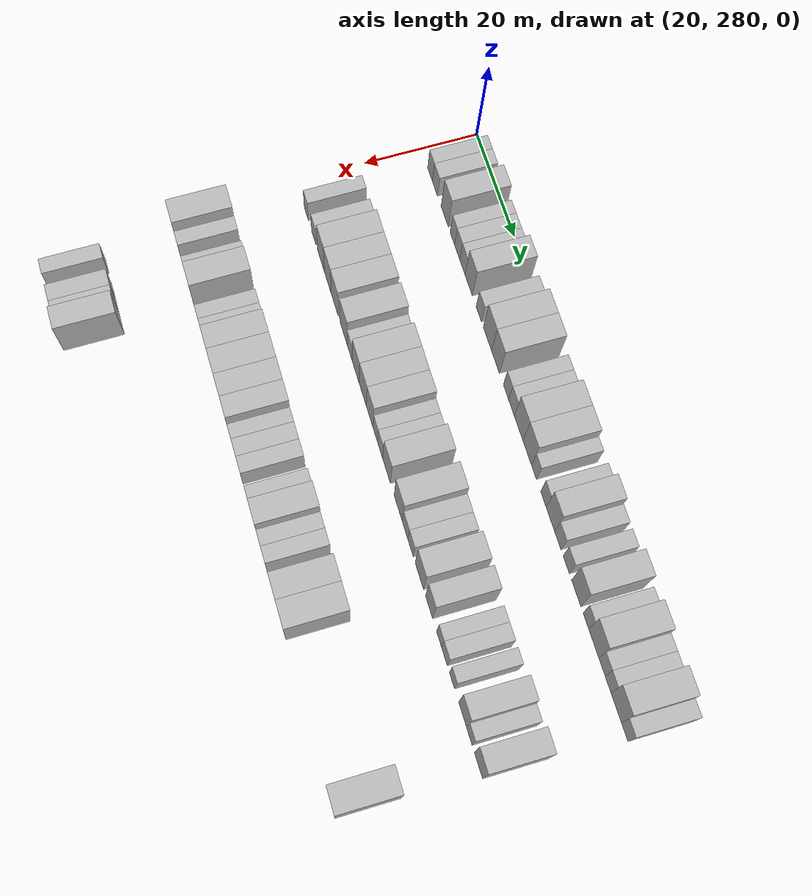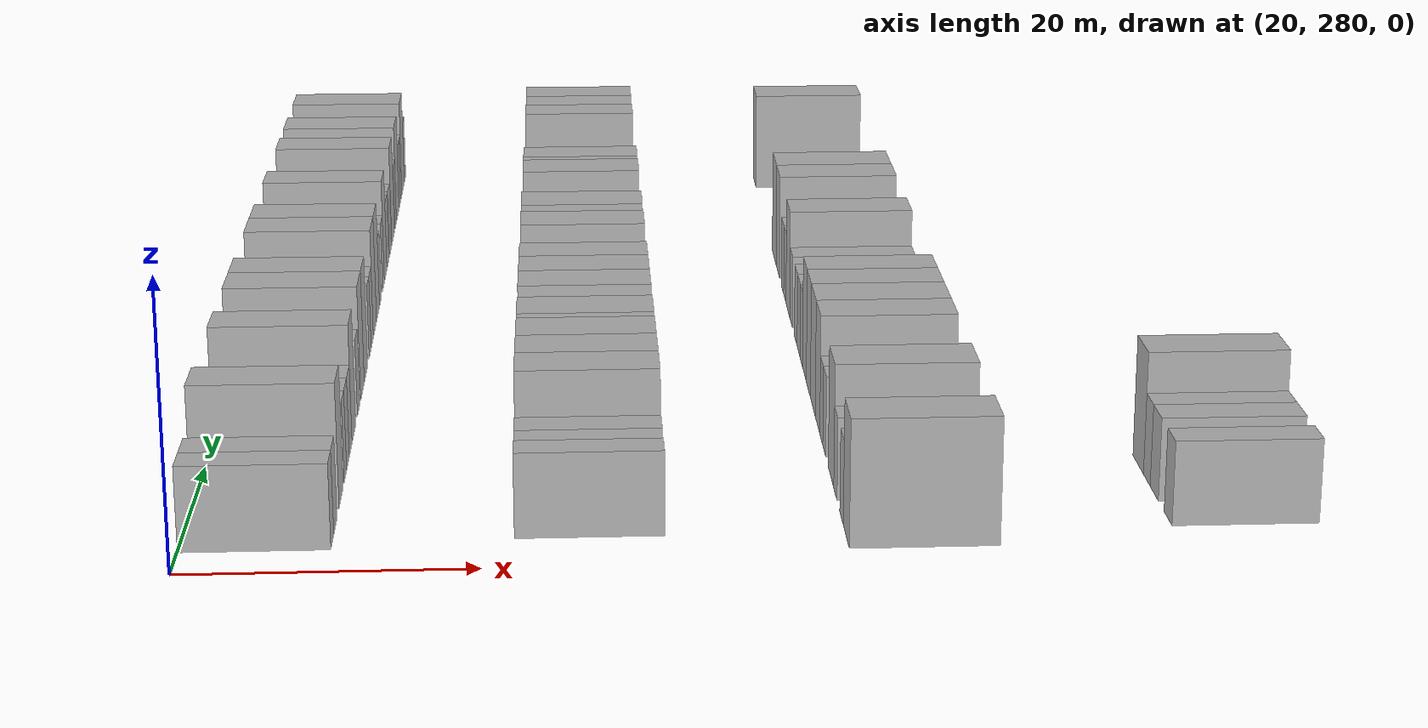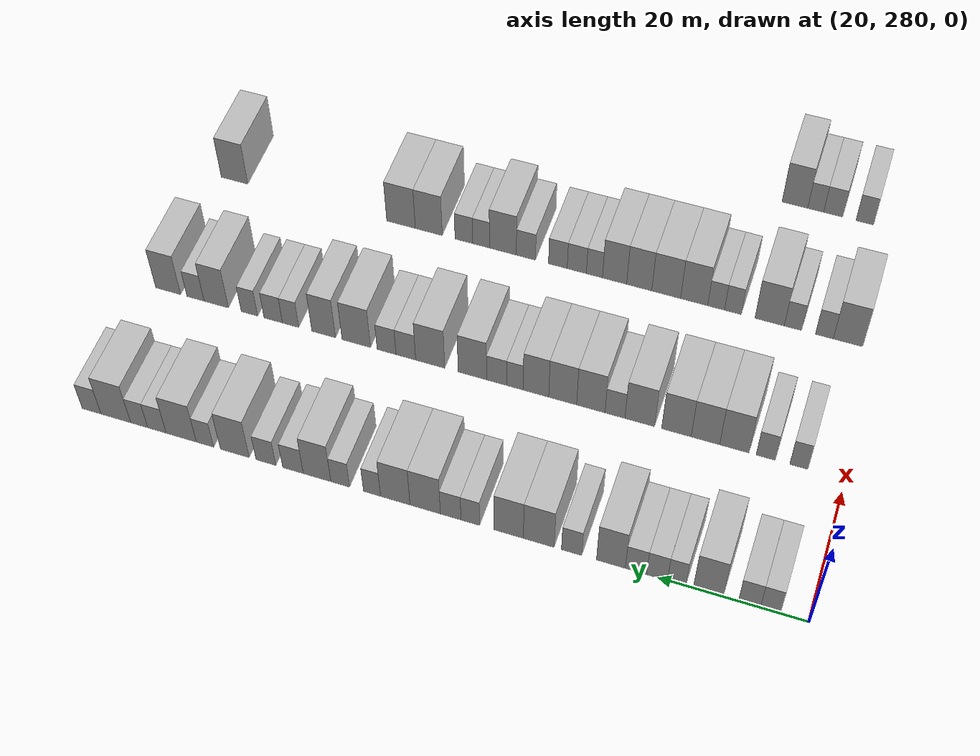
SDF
<sdf version="1.6">
 <world name="default">
  <model name="building_164">
   <static>1</static>
   <pose>25.0000 285.1057 0 0.000000 0.000000 0.000000</pose>
   <link name="link">
    <pose>0 0 3.00 0 0 0</pose>
    <collision name="collision"><geometry><box><size>10.0000 2.6229 6.0000</size></box></geometry></collision>
    <visual name="visual">
     <cast_shadows>0</cast_shadows>
     <geometry><box><size>10.0000 2.6229 6.0000</size></box></geometry>
     <material>
      <script>
       <uri>model://HANNAS_wall/materials/scripts</uri>
       <uri>model://HANNAS_wall/materials/textures</uri>
       <name>vrc/HANNAS_wall</name>
      </script>
     </material>
    </visual>
   </link>
  </model>
  <model name="building_165">
   <static>1</static>
   <pose>25.0000 287.8657 0 0.000000 0.000000 0.000000</pose>
   <link name="link">
    <pose>0 0 3.00 0 0 0</pose>
    <collision name="collision"><geometry><box><size>10.0000 2.8970 6.0000</size></box></geometry></collision>
    <visual name="visual">
     <cast_shadows>0</cast_shadows>
     <geometry><box><size>10.0000 2.8970 6.0000</size></box></geometry>
     <material>
      <script>
       <uri>model://HANNAS_wall/materials/scripts</uri>
       <uri>model://HANNAS_wall/materials/textures</uri>
       <name>vrc/HANNAS_wall</name>
      </script>
     </material>
    </visual>
   </link>
  </model>
  <model name="building_166">
   <static>1</static>
   <pose>25.0000 293.2978 0 0.000000 0.000000 0.000000</pose>
   <link name="link">
    <pose>0 0 4.50 0 0 0</pose>
    <collision name="collision"><geometry><box><size>10.0000 3.9673 9.0000</size></box></geometry></collision>
    <visual name="visual">
     <cast_shadows>0</cast_shadows>
     <geometry><box><size>10.0000 3.9673 9.0000</size></box></geometry>
     <material>
      <script>
       <uri>model://HANNAS_wall/materials/scripts</uri>
       <uri>model://HANNAS_wall/materials/textures</uri>
       <name>vrc/HANNAS_wall</name>
      </script>
     </material>
    </visual>
   </link>
  </model>
  <model name="building_167">
   <static>1</static>
   <pose>25.0000 297.5019 0 0.000000 0.000000 0.000000</pose>
   <link name="link">
    <pose>0 0 3.00 0 0 0</pose>
    <collision name="collision"><geometry><box><size>10.0000 2.4409 6.0000</size></box></geometry></collision>
    <visual name="visual">
     <cast_shadows>0</cast_shadows>
     <geometry><box><size>10.0000 2.4409 6.0000</size></box></geometry>
     <material>
      <script>
       <uri>model://HANNAS_wall/materials/scripts</uri>
       <uri>model://HANNAS_wall/materials/textures</uri>
       <name>vrc/HANNAS_wall</name>
      </script>
     </material>
    </visual>
   </link>
  </model>
  <model name="building_168">
   <static>1</static>
   <pose>25.0000 300.1312 0 0.000000 0.000000 0.000000</pose>
   <link name="link">
    <pose>0 0 3.00 0 0 0</pose>
    <collision name="collision"><geometry><box><size>10.0000 2.8176 6.0000</size></box></geometry></collision>
    <visual name="visual">
     <cast_shadows>0</cast_shadows>
     <geometry><box><size>10.0000 2.8176 6.0000</size></box></geometry>
     <material>
      <script>
       <uri>model://HANNAS_wall/materials/scripts</uri>
       <uri>model://HANNAS_wall/materials/textures</uri>
       <name>vrc/HANNAS_wall</name>
      </script>
     </material>
    </visual>
   </link>
  </model>
  <model name="building_169">
   <static>1</static>
   <pose>25.0000 302.9684 0 0.000000 0.000000 0.000000</pose>
   <link name="link">
    <pose>0 0 3.00 0 0 0</pose>
    <collision name="collision"><geometry><box><size>10.0000 2.8568 6.0000</size></box></geometry></collision>
    <visual name="visual">
     <cast_shadows>0</cast_shadows>
     <geometry><box><size>10.0000 2.8568 6.0000</size></box></geometry>
     <material>
      <script>
       <uri>model://HANNAS_wall/materials/scripts</uri>
       <uri>model://HANNAS_wall/materials/textures</uri>
       <name>vrc/HANNAS_wall</name>
      </script>
     </material>
    </visual>
   </link>
  </model>
  <model name="building_170">
   <static>1</static>
   <pose>25.0000 306.3418 0 0.000000 0.000000 0.000000</pose>
   <link name="link">
    <pose>0 0 4.50 0 0 0</pose>
    <collision name="collision"><geometry><box><size>10.0000 3.8899 9.0000</size></box></geometry></collision>
    <visual name="visual">
     <cast_shadows>0</cast_shadows>
     <geometry><box><size>10.0000 3.8899 9.0000</size></box></geometry>
     <material>
      <script>
       <uri>model://HANNAS_wall/materials/scripts</uri>
       <uri>model://HANNAS_wall/materials/textures</uri>
       <name>vrc/HANNAS_wall</name>
      </script>
     </material>
    </visual>
   </link>
  </model>
  <model name="building_171">
   <static>1</static>
   <pose>25.0000 311.6742 0 0.000000 0.000000 0.000000</pose>
   <link name="link">
    <pose>0 0 3.00 0 0 0</pose>
    <collision name="collision"><geometry><box><size>10.0000 2.7749 6.0000</size></box></geometry></collision>
    <visual name="visual">
     <cast_shadows>0</cast_shadows>
     <geometry><box><size>10.0000 2.7749 6.0000</size></box></geometry>
     <material>
      <script>
       <uri>model://HANNAS_wall/materials/scripts</uri>
       <uri>model://HANNAS_wall/materials/textures</uri>
       <name>vrc/HANNAS_wall</name>
      </script>
     </material>
    </visual>
   </link>
  </model>
  <model name="building_172">
   <static>1</static>
   <pose>25.0000 316.1778 0 0.000000 0.000000 0.000000</pose>
   <link name="link">
    <pose>0 0 4.50 0 0 0</pose>
    <collision name="collision"><geometry><box><size>10.0000 4.2324 9.0000</size></box></geometry></collision>
    <visual name="visual">
     <cast_shadows>0</cast_shadows>
     <geometry><box><size>10.0000 4.2324 9.0000</size></box></geometry>
     <material>
      <script>
       <uri>model://HANNAS_wall/materials/scripts</uri>
       <uri>model://HANNAS_wall/materials/textures</uri>
       <name>vrc/HANNAS_wall</name>
      </script>
     </material>
    </visual>
   </link>
  </model>
  <model name="building_173">
   <static>1</static>
   <pose>25.0000 320.3230 0 0.000000 0.000000 0.000000</pose>
   <link name="link">
    <pose>0 0 4.50 0 0 0</pose>
    <collision name="collision"><geometry><box><size>10.0000 4.0580 9.0000</size></box></geometry></collision>
    <visual name="visual">
     <cast_shadows>0</cast_shadows>
     <geometry><box><size>10.0000 4.0580 9.0000</size></box></geometry>
     <material>
      <script>
       <uri>model://HANNAS_wall/materials/scripts</uri>
       <uri>model://HANNAS_wall/materials/textures</uri>
       <name>vrc/HANNAS_wall</name>
      </script>
     </material>
    </visual>
   </link>
  </model>
  <model name="building_174">
   <static>1</static>
   <pose>25.0000 325.6530 0 0.000000 0.000000 0.000000</pose>
   <link name="link">
    <pose>0 0 3.00 0 0 0</pose>
    <collision name="collision"><geometry><box><size>10.0000 2.6021 6.0000</size></box></geometry></collision>
    <visual name="visual">
     <cast_shadows>0</cast_shadows>
     <geometry><box><size>10.0000 2.6021 6.0000</size></box></geometry>
     <material>
      <script>
       <uri>model://HANNAS_wall/materials/scripts</uri>
       <uri>model://HANNAS_wall/materials/textures</uri>
       <name>vrc/HANNAS_wall</name>
      </script>
     </material>
    </visual>
   </link>
  </model>
  <model name="building_175">
   <static>1</static>
   <pose>25.0000 328.3944 0 0.000000 0.000000 0.000000</pose>
   <link name="link">
    <pose>0 0 3.00 0 0 0</pose>
    <collision name="collision"><geometry><box><size>10.0000 2.8807 6.0000</size></box></geometry></collision>
    <visual name="visual">
     <cast_shadows>0</cast_shadows>
     <geometry><box><size>10.0000 2.8807 6.0000</size></box></geometry>
     <material>
      <script>
       <uri>model://HANNAS_wall/materials/scripts</uri>
       <uri>model://HANNAS_wall/materials/textures</uri>
       <name>vrc/HANNAS_wall</name>
      </script>
     </material>
    </visual>
   </link>
  </model>
  <model name="building_176">
   <static>1</static>
   <pose>25.0000 331.9750 0 0.000000 0.000000 0.000000</pose>
   <link name="link">
    <pose>0 0 4.50 0 0 0</pose>
    <collision name="collision"><geometry><box><size>10.0000 4.2806 9.0000</size></box></geometry></collision>
    <visual name="visual">
     <cast_shadows>0</cast_shadows>
     <geometry><box><size>10.0000 4.2806 9.0000</size></box></geometry>
     <material>
      <script>
       <uri>model://HANNAS_wall/materials/scripts</uri>
       <uri>model://HANNAS_wall/materials/textures</uri>
       <name>vrc/HANNAS_wall</name>
      </script>
     </material>
    </visual>
   </link>
  </model>
  <model name="building_177">
   <static>1</static>
   <pose>25.0000 336.2088 0 0.000000 0.000000 0.000000</pose>
   <link name="link">
    <pose>0 0 4.50 0 0 0</pose>
    <collision name="collision"><geometry><box><size>10.0000 4.1870 9.0000</size></box></geometry></collision>
    <visual name="visual">
     <cast_shadows>0</cast_shadows>
     <geometry><box><size>10.0000 4.1870 9.0000</size></box></geometry>
     <material>
      <script>
       <uri>model://HANNAS_wall/materials/scripts</uri>
       <uri>model://HANNAS_wall/materials/textures</uri>
       <name>vrc/HANNAS_wall</name>
      </script>
     </material>
    </visual>
   </link>
  </model>
  <model name="building_178">
   <static>1</static>
   <pose>25.0000 339.5076 0 0.000000 0.000000 0.000000</pose>
   <link name="link">
    <pose>0 0 3.00 0 0 0</pose>
    <collision name="collision"><geometry><box><size>10.0000 2.4106 6.0000</size></box></geometry></collision>
    <visual name="visual">
     <cast_shadows>0</cast_shadows>
     <geometry><box><size>10.0000 2.4106 6.0000</size></box></geometry>
     <material>
      <script>
       <uri>model://HANNAS_wall/materials/scripts</uri>
       <uri>model://HANNAS_wall/materials/textures</uri>
       <name>vrc/HANNAS_wall</name>
      </script>
     </material>
    </visual>
   </link>
  </model>
  <model name="building_179">
   <static>1</static>
   <pose>25.0000 344.0522 0 0.000000 0.000000 0.000000</pose>
   <link name="link">
    <pose>0 0 3.00 0 0 0</pose>
    <collision name="collision"><geometry><box><size>10.0000 2.6786 6.0000</size></box></geometry></collision>
    <visual name="visual">
     <cast_shadows>0</cast_shadows>
     <geometry><box><size>10.0000 2.6786 6.0000</size></box></geometry>
     <material>
      <script>
       <uri>model://HANNAS_wall/materials/scripts</uri>
       <uri>model://HANNAS_wall/materials/textures</uri>
       <name>vrc/HANNAS_wall</name>
      </script>
     </material>
    </visual>
   </link>
  </model>
  <model name="building_180">
   <static>1</static>
   <pose>25.0000 347.3830 0 0.000000 0.000000 0.000000</pose>
   <link name="link">
    <pose>0 0 4.50 0 0 0</pose>
    <collision name="collision"><geometry><box><size>10.0000 3.9830 9.0000</size></box></geometry></collision>
    <visual name="visual">
     <cast_shadows>0</cast_shadows>
     <geometry><box><size>10.0000 3.9830 9.0000</size></box></geometry>
     <material>
      <script>
       <uri>model://HANNAS_wall/materials/scripts</uri>
       <uri>model://HANNAS_wall/materials/textures</uri>
       <name>vrc/HANNAS_wall</name>
      </script>
     </material>
    </visual>
   </link>
  </model>
  <model name="building_181">
   <static>1</static>
   <pose>25.0000 350.8645 0 0.000000 0.000000 0.000000</pose>
   <link name="link">
    <pose>0 0 3.00 0 0 0</pose>
    <collision name="collision"><geometry><box><size>10.0000 2.9799 6.0000</size></box></geometry></collision>
    <visual name="visual">
     <cast_shadows>0</cast_shadows>
     <geometry><box><size>10.0000 2.9799 6.0000</size></box></geometry>
     <material>
      <script>
       <uri>model://HANNAS_wall/materials/scripts</uri>
       <uri>model://HANNAS_wall/materials/textures</uri>
       <name>vrc/HANNAS_wall</name>
      </script>
     </material>
    </visual>
   </link>
  </model>
  <model name="building_182">
   <static>1</static>
   <pose>25.0000 354.7962 0 0.000000 0.000000 0.000000</pose>
   <link name="link">
    <pose>0 0 3.00 0 0 0</pose>
    <collision name="collision"><geometry><box><size>10.0000 2.8835 6.0000</size></box></geometry></collision>
    <visual name="visual">
     <cast_shadows>0</cast_shadows>
     <geometry><box><size>10.0000 2.8835 6.0000</size></box></geometry>
     <material>
      <script>
       <uri>model://HANNAS_wall/materials/scripts</uri>
       <uri>model://HANNAS_wall/materials/textures</uri>
       <name>vrc/HANNAS_wall</name>
      </script>
     </material>
    </visual>
   </link>
  </model>
  <model name="building_183">
   <static>1</static>
   <pose>25.0000 359.3521 0 0.000000 0.000000 0.000000</pose>
   <link name="link">
    <pose>0 0 4.50 0 0 0</pose>
    <collision name="collision"><geometry><box><size>10.0000 4.2284 9.0000</size></box></geometry></collision>
    <visual name="visual">
     <cast_shadows>0</cast_shadows>
     <geometry><box><size>10.0000 4.2284 9.0000</size></box></geometry>
     <material>
      <script>
       <uri>model://HANNAS_wall/materials/scripts</uri>
       <uri>model://HANNAS_wall/materials/textures</uri>
       <name>vrc/HANNAS_wall</name>
      </script>
     </material>
    </visual>
   </link>
  </model>
  <model name="building_184">
   <static>1</static>
   <pose>25.0000 363.7440 0 0.000000 0.000000 0.000000</pose>
   <link name="link">
    <pose>0 0 3.00 0 0 0</pose>
    <collision name="collision"><geometry><box><size>10.0000 2.5555 6.0000</size></box></geometry></collision>
    <visual name="visual">
     <cast_shadows>0</cast_shadows>
     <geometry><box><size>10.0000 2.5555 6.0000</size></box></geometry>
     <material>
      <script>
       <uri>model://HANNAS_wall/materials/scripts</uri>
       <uri>model://HANNAS_wall/materials/textures</uri>
       <name>vrc/HANNAS_wall</name>
      </script>
     </material>
    </visual>
   </link>
  </model>
  <model name="building_185">
   <static>1</static>
   <pose>25.0000 367.2631 0 0.000000 0.000000 0.000000</pose>
   <link name="link">
    <pose>0 0 4.50 0 0 0</pose>
    <collision name="collision"><geometry><box><size>10.0000 4.4826 9.0000</size></box></geometry></collision>
    <visual name="visual">
     <cast_shadows>0</cast_shadows>
     <geometry><box><size>10.0000 4.4826 9.0000</size></box></geometry>
     <material>
      <script>
       <uri>model://HANNAS_wall/materials/scripts</uri>
       <uri>model://HANNAS_wall/materials/textures</uri>
       <name>vrc/HANNAS_wall</name>
      </script>
     </material>
    </visual>
   </link>
  </model>
  <model name="building_186">
   <static>1</static>
   <pose>25.0000 370.8858 0 0.000000 0.000000 0.000000</pose>
   <link name="link">
    <pose>0 0 3.00 0 0 0</pose>
    <collision name="collision"><geometry><box><size>10.0000 2.7629 6.0000</size></box></geometry></collision>
    <visual name="visual">
     <cast_shadows>0</cast_shadows>
     <geometry><box><size>10.0000 2.7629 6.0000</size></box></geometry>
     <material>
      <script>
       <uri>model://HANNAS_wall/materials/scripts</uri>
       <uri>model://HANNAS_wall/materials/textures</uri>
       <name>vrc/HANNAS_wall</name>
      </script>
     </material>
    </visual>
   </link>
  </model>
  <model name="building_187">
   <static>1</static>
   <pose>25.0000 373.5499 0 0.000000 0.000000 0.000000</pose>
   <link name="link">
    <pose>0 0 3.00 0 0 0</pose>
    <collision name="collision"><geometry><box><size>10.0000 2.5653 6.0000</size></box></geometry></collision>
    <visual name="visual">
     <cast_shadows>0</cast_shadows>
     <geometry><box><size>10.0000 2.5653 6.0000</size></box></geometry>
     <material>
      <script>
       <uri>model://HANNAS_wall/materials/scripts</uri>
       <uri>model://HANNAS_wall/materials/textures</uri>
       <name>vrc/HANNAS_wall</name>
      </script>
     </material>
    </visual>
   </link>
  </model>
  <model name="building_188">
   <static>1</static>
   <pose>25.0000 377.0662 0 0.000000 0.000000 0.000000</pose>
   <link name="link">
    <pose>0 0 4.50 0 0 0</pose>
    <collision name="collision"><geometry><box><size>10.0000 4.4672 9.0000</size></box></geometry></collision>
    <visual name="visual">
     <cast_shadows>0</cast_shadows>
     <geometry><box><size>10.0000 4.4672 9.0000</size></box></geometry>
     <material>
      <script>
       <uri>model://HANNAS_wall/materials/scripts</uri>
       <uri>model://HANNAS_wall/materials/textures</uri>
       <name>vrc/HANNAS_wall</name>
      </script>
     </material>
    </visual>
   </link>
  </model>
  <model name="building_189">
   <static>1</static>
   <pose>25.0000 380.7183 0 0.000000 0.000000 0.000000</pose>
   <link name="link">
    <pose>0 0 3.00 0 0 0</pose>
    <collision name="collision"><geometry><box><size>10.0000 2.8371 6.0000</size></box></geometry></collision>
    <visual name="visual">
     <cast_shadows>0</cast_shadows>
     <geometry><box><size>10.0000 2.8371 6.0000</size></box></geometry>
     <material>
      <script>
       <uri>model://HANNAS_wall/materials/scripts</uri>
       <uri>model://HANNAS_wall/materials/textures</uri>
       <name>vrc/HANNAS_wall</name>
      </script>
     </material>
    </visual>
   </link>
  </model>
  <model name="building_345">
   <static>1</static>
   <pose>47.0000 286.4141 0 0.000000 0.000000 0.000000</pose>
   <link name="link">
    <pose>0 0 3.00 0 0 0</pose>
    <collision name="collision"><geometry><box><size>10.0000 2.5026 6.0000</size></box></geometry></collision>
    <visual name="visual">
     <cast_shadows>0</cast_shadows>
     <geometry><box><size>10.0000 2.5026 6.0000</size></box></geometry>
     <material>
      <script>
       <uri>model://HANNAS_wall/materials/scripts</uri>
       <uri>model://HANNAS_wall/materials/textures</uri>
       <name>vrc/HANNAS_wall</name>
      </script>
     </material>
    </visual>
   </link>
  </model>
  <model name="building_346">
   <static>1</static>
   <pose>47.0000 290.9890 0 0.000000 0.000000 0.000000</pose>
   <link name="link">
    <pose>0 0 3.00 0 0 0</pose>
    <collision name="collision"><geometry><box><size>10.0000 2.6471 6.0000</size></box></geometry></collision>
    <visual name="visual">
     <cast_shadows>0</cast_shadows>
     <geometry><box><size>10.0000 2.6471 6.0000</size></box></geometry>
     <material>
      <script>
       <uri>model://HANNAS_wall/materials/scripts</uri>
       <uri>model://HANNAS_wall/materials/textures</uri>
       <name>vrc/HANNAS_wall</name>
      </script>
     </material>
    </visual>
   </link>
  </model>
  <model name="building_347">
   <static>1</static>
   <pose>47.0000 295.3597 0 0.000000 0.000000 0.000000</pose>
   <link name="link">
    <pose>0 0 4.50 0 0 0</pose>
    <collision name="collision"><geometry><box><size>10.0000 4.0942 9.0000</size></box></geometry></collision>
    <visual name="visual">
     <cast_shadows>0</cast_shadows>
     <geometry><box><size>10.0000 4.0942 9.0000</size></box></geometry>
     <material>
      <script>
       <uri>model://HANNAS_wall/materials/scripts</uri>
       <uri>model://HANNAS_wall/materials/textures</uri>
       <name>vrc/HANNAS_wall</name>
      </script>
     </material>
    </visual>
   </link>
  </model>
  <model name="building_348">
   <static>1</static>
   <pose>47.0000 299.4122 0 0.000000 0.000000 0.000000</pose>
   <link name="link">
    <pose>0 0 4.50 0 0 0</pose>
    <collision name="collision"><geometry><box><size>10.0000 4.0108 9.0000</size></box></geometry></collision>
    <visual name="visual">
     <cast_shadows>0</cast_shadows>
     <geometry><box><size>10.0000 4.0108 9.0000</size></box></geometry>
     <material>
      <script>
       <uri>model://HANNAS_wall/materials/scripts</uri>
       <uri>model://HANNAS_wall/materials/textures</uri>
       <name>vrc/HANNAS_wall</name>
      </script>
     </material>
    </visual>
   </link>
  </model>
  <model name="building_349">
   <static>1</static>
   <pose>47.0000 303.4956 0 0.000000 0.000000 0.000000</pose>
   <link name="link">
    <pose>0 0 4.50 0 0 0</pose>
    <collision name="collision"><geometry><box><size>10.0000 4.1561 9.0000</size></box></geometry></collision>
    <visual name="visual">
     <cast_shadows>0</cast_shadows>
     <geometry><box><size>10.0000 4.1561 9.0000</size></box></geometry>
     <material>
      <script>
       <uri>model://HANNAS_wall/materials/scripts</uri>
       <uri>model://HANNAS_wall/materials/textures</uri>
       <name>vrc/HANNAS_wall</name>
      </script>
     </material>
    </visual>
   </link>
  </model>
  <model name="building_350">
   <static>1</static>
   <pose>47.0000 308.6866 0 0.000000 0.000000 0.000000</pose>
   <link name="link">
    <pose>0 0 4.50 0 0 0</pose>
    <collision name="collision"><geometry><box><size>10.0000 4.2259 9.0000</size></box></geometry></collision>
    <visual name="visual">
     <cast_shadows>0</cast_shadows>
     <geometry><box><size>10.0000 4.2259 9.0000</size></box></geometry>
     <material>
      <script>
       <uri>model://HANNAS_wall/materials/scripts</uri>
       <uri>model://HANNAS_wall/materials/textures</uri>
       <name>vrc/HANNAS_wall</name>
      </script>
     </material>
    </visual>
   </link>
  </model>
  <model name="building_351">
   <static>1</static>
   <pose>47.0000 312.2219 0 0.000000 0.000000 0.000000</pose>
   <link name="link">
    <pose>0 0 3.00 0 0 0</pose>
    <collision name="collision"><geometry><box><size>10.0000 2.8447 6.0000</size></box></geometry></collision>
    <visual name="visual">
     <cast_shadows>0</cast_shadows>
     <geometry><box><size>10.0000 2.8447 6.0000</size></box></geometry>
     <material>
      <script>
       <uri>model://HANNAS_wall/materials/scripts</uri>
       <uri>model://HANNAS_wall/materials/textures</uri>
       <name>vrc/HANNAS_wall</name>
      </script>
     </material>
    </visual>
   </link>
  </model>
  <model name="building_352">
   <static>1</static>
   <pose>47.0000 315.6853 0 0.000000 0.000000 0.000000</pose>
   <link name="link">
    <pose>0 0 4.50 0 0 0</pose>
    <collision name="collision"><geometry><box><size>10.0000 4.0821 9.0000</size></box></geometry></collision>
    <visual name="visual">
     <cast_shadows>0</cast_shadows>
     <geometry><box><size>10.0000 4.0821 9.0000</size></box></geometry>
     <material>
      <script>
       <uri>model://HANNAS_wall/materials/scripts</uri>
       <uri>model://HANNAS_wall/materials/textures</uri>
       <name>vrc/HANNAS_wall</name>
      </script>
     </material>
    </visual>
   </link>
  </model>
  <model name="building_353">
   <static>1</static>
   <pose>47.0000 319.7417 0 0.000000 0.000000 0.000000</pose>
   <link name="link">
    <pose>0 0 4.50 0 0 0</pose>
    <collision name="collision"><geometry><box><size>10.0000 4.0307 9.0000</size></box></geometry></collision>
    <visual name="visual">
     <cast_shadows>0</cast_shadows>
     <geometry><box><size>10.0000 4.0307 9.0000</size></box></geometry>
     <material>
      <script>
       <uri>model://HANNAS_wall/materials/scripts</uri>
       <uri>model://HANNAS_wall/materials/textures</uri>
       <name>vrc/HANNAS_wall</name>
      </script>
     </material>
    </visual>
   </link>
  </model>
  <model name="building_354">
   <static>1</static>
   <pose>47.0000 323.6150 0 0.000000 0.000000 0.000000</pose>
   <link name="link">
    <pose>0 0 4.50 0 0 0</pose>
    <collision name="collision"><geometry><box><size>10.0000 3.7158 9.0000</size></box></geometry></collision>
    <visual name="visual">
     <cast_shadows>0</cast_shadows>
     <geometry><box><size>10.0000 3.7158 9.0000</size></box></geometry>
     <material>
      <script>
       <uri>model://HANNAS_wall/materials/scripts</uri>
       <uri>model://HANNAS_wall/materials/textures</uri>
       <name>vrc/HANNAS_wall</name>
      </script>
     </material>
    </visual>
   </link>
  </model>
  <model name="building_355">
   <static>1</static>
   <pose>47.0000 326.6902 0 0.000000 0.000000 0.000000</pose>
   <link name="link">
    <pose>0 0 3.00 0 0 0</pose>
    <collision name="collision"><geometry><box><size>10.0000 2.4345 6.0000</size></box></geometry></collision>
    <visual name="visual">
     <cast_shadows>0</cast_shadows>
     <geometry><box><size>10.0000 2.4345 6.0000</size></box></geometry>
     <material>
      <script>
       <uri>model://HANNAS_wall/materials/scripts</uri>
       <uri>model://HANNAS_wall/materials/textures</uri>
       <name>vrc/HANNAS_wall</name>
      </script>
     </material>
    </visual>
   </link>
  </model>
  <model name="building_356">
   <static>1</static>
   <pose>47.0000 329.3553 0 0.000000 0.000000 0.000000</pose>
   <link name="link">
    <pose>0 0 3.00 0 0 0</pose>
    <collision name="collision"><geometry><box><size>10.0000 2.8957 6.0000</size></box></geometry></collision>
    <visual name="visual">
     <cast_shadows>0</cast_shadows>
     <geometry><box><size>10.0000 2.8957 6.0000</size></box></geometry>
     <material>
      <script>
       <uri>model://HANNAS_wall/materials/scripts</uri>
       <uri>model://HANNAS_wall/materials/textures</uri>
       <name>vrc/HANNAS_wall</name>
      </script>
     </material>
    </visual>
   </link>
  </model>
  <model name="building_357">
   <static>1</static>
   <pose>47.0000 332.8949 0 0.000000 0.000000 0.000000</pose>
   <link name="link">
    <pose>0 0 4.50 0 0 0</pose>
    <collision name="collision"><geometry><box><size>10.0000 4.1837 9.0000</size></box></geometry></collision>
    <visual name="visual">
     <cast_shadows>0</cast_shadows>
     <geometry><box><size>10.0000 4.1837 9.0000</size></box></geometry>
     <material>
      <script>
       <uri>model://HANNAS_wall/materials/scripts</uri>
       <uri>model://HANNAS_wall/materials/textures</uri>
       <name>vrc/HANNAS_wall</name>
      </script>
     </material>
    </visual>
   </link>
  </model>
  <model name="building_358">
   <static>1</static>
   <pose>47.0000 339.1475 0 0.000000 0.000000 0.000000</pose>
   <link name="link">
    <pose>0 0 4.50 0 0 0</pose>
    <collision name="collision"><geometry><box><size>10.0000 4.3216 9.0000</size></box></geometry></collision>
    <visual name="visual">
     <cast_shadows>0</cast_shadows>
     <geometry><box><size>10.0000 4.3216 9.0000</size></box></geometry>
     <material>
      <script>
       <uri>model://HANNAS_wall/materials/scripts</uri>
       <uri>model://HANNAS_wall/materials/textures</uri>
       <name>vrc/HANNAS_wall</name>
      </script>
     </material>
    </visual>
   </link>
  </model>
  <model name="building_359">
   <static>1</static>
   <pose>47.0000 342.7849 0 0.000000 0.000000 0.000000</pose>
   <link name="link">
    <pose>0 0 3.00 0 0 0</pose>
    <collision name="collision"><geometry><box><size>10.0000 2.9531 6.0000</size></box></geometry></collision>
    <visual name="visual">
     <cast_shadows>0</cast_shadows>
     <geometry><box><size>10.0000 2.9531 6.0000</size></box></geometry>
     <material>
      <script>
       <uri>model://HANNAS_wall/materials/scripts</uri>
       <uri>model://HANNAS_wall/materials/textures</uri>
       <name>vrc/HANNAS_wall</name>
      </script>
     </material>
    </visual>
   </link>
  </model>
  <model name="building_360">
   <static>1</static>
   <pose>47.0000 345.6734 0 0.000000 0.000000 0.000000</pose>
   <link name="link">
    <pose>0 0 3.00 0 0 0</pose>
    <collision name="collision"><geometry><box><size>10.0000 2.8239 6.0000</size></box></geometry></collision>
    <visual name="visual">
     <cast_shadows>0</cast_shadows>
     <geometry><box><size>10.0000 2.8239 6.0000</size></box></geometry>
     <material>
      <script>
       <uri>model://HANNAS_wall/materials/scripts</uri>
       <uri>model://HANNAS_wall/materials/textures</uri>
       <name>vrc/HANNAS_wall</name>
      </script>
     </material>
    </visual>
   </link>
  </model>
  <model name="building_361">
   <static>1</static>
   <pose>47.0000 350.2312 0 0.000000 0.000000 0.000000</pose>
   <link name="link">
    <pose>0 0 4.50 0 0 0</pose>
    <collision name="collision"><geometry><box><size>10.0000 4.2918 9.0000</size></box></geometry></collision>
    <visual name="visual">
     <cast_shadows>0</cast_shadows>
     <geometry><box><size>10.0000 4.2918 9.0000</size></box></geometry>
     <material>
      <script>
       <uri>model://HANNAS_wall/materials/scripts</uri>
       <uri>model://HANNAS_wall/materials/textures</uri>
       <name>vrc/HANNAS_wall</name>
      </script>
     </material>
    </visual>
   </link>
  </model>
  <model name="building_362">
   <static>1</static>
   <pose>47.0000 355.1775 0 0.000000 0.000000 0.000000</pose>
   <link name="link">
    <pose>0 0 4.50 0 0 0</pose>
    <collision name="collision"><geometry><box><size>10.0000 3.6007 9.0000</size></box></geometry></collision>
    <visual name="visual">
     <cast_shadows>0</cast_shadows>
     <geometry><box><size>10.0000 3.6007 9.0000</size></box></geometry>
     <material>
      <script>
       <uri>model://HANNAS_wall/materials/scripts</uri>
       <uri>model://HANNAS_wall/materials/textures</uri>
       <name>vrc/HANNAS_wall</name>
      </script>
     </material>
    </visual>
   </link>
  </model>
  <model name="building_363">
   <static>1</static>
   <pose>47.0000 360.2340 0 0.000000 0.000000 0.000000</pose>
   <link name="link">
    <pose>0 0 3.00 0 0 0</pose>
    <collision name="collision"><geometry><box><size>10.0000 2.5124 6.0000</size></box></geometry></collision>
    <visual name="visual">
     <cast_shadows>0</cast_shadows>
     <geometry><box><size>10.0000 2.5124 6.0000</size></box></geometry>
     <material>
      <script>
       <uri>model://HANNAS_wall/materials/scripts</uri>
       <uri>model://HANNAS_wall/materials/textures</uri>
       <name>vrc/HANNAS_wall</name>
      </script>
     </material>
    </visual>
   </link>
  </model>
  <model name="building_364">
   <static>1</static>
   <pose>47.0000 362.8996 0 0.000000 0.000000 0.000000</pose>
   <link name="link">
    <pose>0 0 3.00 0 0 0</pose>
    <collision name="collision"><geometry><box><size>10.0000 2.8188 6.0000</size></box></geometry></collision>
    <visual name="visual">
     <cast_shadows>0</cast_shadows>
     <geometry><box><size>10.0000 2.8188 6.0000</size></box></geometry>
     <material>
      <script>
       <uri>model://HANNAS_wall/materials/scripts</uri>
       <uri>model://HANNAS_wall/materials/textures</uri>
       <name>vrc/HANNAS_wall</name>
      </script>
     </material>
    </visual>
   </link>
  </model>
  <model name="building_365">
   <static>1</static>
   <pose>47.0000 366.5735 0 0.000000 0.000000 0.000000</pose>
   <link name="link">
    <pose>0 0 3.00 0 0 0</pose>
    <collision name="collision"><geometry><box><size>10.0000 2.5292 6.0000</size></box></geometry></collision>
    <visual name="visual">
     <cast_shadows>0</cast_shadows>
     <geometry><box><size>10.0000 2.5292 6.0000</size></box></geometry>
     <material>
      <script>
       <uri>model://HANNAS_wall/materials/scripts</uri>
       <uri>model://HANNAS_wall/materials/textures</uri>
       <name>vrc/HANNAS_wall</name>
      </script>
     </material>
    </visual>
   </link>
  </model>
  <model name="building_366">
   <static>1</static>
   <pose>47.0000 371.7346 0 0.000000 0.000000 0.000000</pose>
   <link name="link">
    <pose>0 0 4.50 0 0 0</pose>
    <collision name="collision"><geometry><box><size>10.0000 3.7930 9.0000</size></box></geometry></collision>
    <visual name="visual">
     <cast_shadows>0</cast_shadows>
     <geometry><box><size>10.0000 3.7930 9.0000</size></box></geometry>
     <material>
      <script>
       <uri>model://HANNAS_wall/materials/scripts</uri>
       <uri>model://HANNAS_wall/materials/textures</uri>
       <name>vrc/HANNAS_wall</name>
      </script>
     </material>
    </visual>
   </link>
  </model>
  <model name="building_367">
   <static>1</static>
   <pose>47.0000 374.9677 0 0.000000 0.000000 0.000000</pose>
   <link name="link">
    <pose>0 0 3.00 0 0 0</pose>
    <collision name="collision"><geometry><box><size>10.0000 2.6732 6.0000</size></box></geometry></collision>
    <visual name="visual">
     <cast_shadows>0</cast_shadows>
     <geometry><box><size>10.0000 2.6732 6.0000</size></box></geometry>
     <material>
      <script>
       <uri>model://HANNAS_wall/materials/scripts</uri>
       <uri>model://HANNAS_wall/materials/textures</uri>
       <name>vrc/HANNAS_wall</name>
      </script>
     </material>
    </visual>
   </link>
  </model>
  <model name="building_368">
   <static>1</static>
   <pose>47.0000 379.2585 0 0.000000 0.000000 0.000000</pose>
   <link name="link">
    <pose>0 0 4.50 0 0 0</pose>
    <collision name="collision"><geometry><box><size>10.0000 3.9084 9.0000</size></box></geometry></collision>
    <visual name="visual">
     <cast_shadows>0</cast_shadows>
     <geometry><box><size>10.0000 3.9084 9.0000</size></box></geometry>
     <material>
      <script>
       <uri>model://HANNAS_wall/materials/scripts</uri>
       <uri>model://HANNAS_wall/materials/textures</uri>
       <name>vrc/HANNAS_wall</name>
      </script>
     </material>
    </visual>
   </link>
  </model>
  <model name="building_520">
   <static>1</static>
   <pose>69.0000 284.3767 0 0.000000 0.000000 0.000000</pose>
   <link name="link">
    <pose>0 0 4.50 0 0 0</pose>
    <collision name="collision"><geometry><box><size>10.0000 4.2348 9.0000</size></box></geometry></collision>
    <visual name="visual">
     <cast_shadows>0</cast_shadows>
     <geometry><box><size>10.0000 4.2348 9.0000</size></box></geometry>
     <material>
      <script>
       <uri>model://HANNAS_wall/materials/scripts</uri>
       <uri>model://HANNAS_wall/materials/textures</uri>
       <name>vrc/HANNAS_wall</name>
      </script>
     </material>
    </visual>
   </link>
  </model>
  <model name="building_521">
   <static>1</static>
   <pose>69.0000 287.7784 0 0.000000 0.000000 0.000000</pose>
   <link name="link">
    <pose>0 0 3.00 0 0 0</pose>
    <collision name="collision"><geometry><box><size>10.0000 2.5685 6.0000</size></box></geometry></collision>
    <visual name="visual">
     <cast_shadows>0</cast_shadows>
     <geometry><box><size>10.0000 2.5685 6.0000</size></box></geometry>
     <material>
      <script>
       <uri>model://HANNAS_wall/materials/scripts</uri>
       <uri>model://HANNAS_wall/materials/textures</uri>
       <name>vrc/HANNAS_wall</name>
      </script>
     </material>
    </visual>
   </link>
  </model>
  <model name="building_522">
   <static>1</static>
   <pose>69.0000 292.3229 0 0.000000 0.000000 0.000000</pose>
   <link name="link">
    <pose>0 0 3.00 0 0 0</pose>
    <collision name="collision"><geometry><box><size>10.0000 2.5205 6.0000</size></box></geometry></collision>
    <visual name="visual">
     <cast_shadows>0</cast_shadows>
     <geometry><box><size>10.0000 2.5205 6.0000</size></box></geometry>
     <material>
      <script>
       <uri>model://HANNAS_wall/materials/scripts</uri>
       <uri>model://HANNAS_wall/materials/textures</uri>
       <name>vrc/HANNAS_wall</name>
      </script>
     </material>
    </visual>
   </link>
  </model>
  <model name="building_523">
   <static>1</static>
   <pose>69.0000 295.7220 0 0.000000 0.000000 0.000000</pose>
   <link name="link">
    <pose>0 0 4.50 0 0 0</pose>
    <collision name="collision"><geometry><box><size>10.0000 4.2778 9.0000</size></box></geometry></collision>
    <visual name="visual">
     <cast_shadows>0</cast_shadows>
     <geometry><box><size>10.0000 4.2778 9.0000</size></box></geometry>
     <material>
      <script>
       <uri>model://HANNAS_wall/materials/scripts</uri>
       <uri>model://HANNAS_wall/materials/textures</uri>
       <name>vrc/HANNAS_wall</name>
      </script>
     </material>
    </visual>
   </link>
  </model>
  <model name="building_524">
   <static>1</static>
   <pose>69.0000 301.0984 0 0.000000 0.000000 0.000000</pose>
   <link name="link">
    <pose>0 0 3.00 0 0 0</pose>
    <collision name="collision"><geometry><box><size>10.0000 2.4748 6.0000</size></box></geometry></collision>
    <visual name="visual">
     <cast_shadows>0</cast_shadows>
     <geometry><box><size>10.0000 2.4748 6.0000</size></box></geometry>
     <material>
      <script>
       <uri>model://HANNAS_wall/materials/scripts</uri>
       <uri>model://HANNAS_wall/materials/textures</uri>
       <name>vrc/HANNAS_wall</name>
      </script>
     </material>
    </visual>
   </link>
  </model>
  <model name="building_525">
   <static>1</static>
   <pose>69.0000 303.5728 0 0.000000 0.000000 0.000000</pose>
   <link name="link">
    <pose>0 0 3.00 0 0 0</pose>
    <collision name="collision"><geometry><box><size>10.0000 2.4742 6.0000</size></box></geometry></collision>
    <visual name="visual">
     <cast_shadows>0</cast_shadows>
     <geometry><box><size>10.0000 2.4742 6.0000</size></box></geometry>
     <material>
      <script>
       <uri>model://HANNAS_wall/materials/scripts</uri>
       <uri>model://HANNAS_wall/materials/textures</uri>
       <name>vrc/HANNAS_wall</name>
      </script>
     </material>
    </visual>
   </link>
  </model>
  <model name="building_526">
   <static>1</static>
   <pose>69.0000 306.8169 0 0.000000 0.000000 0.000000</pose>
   <link name="link">
    <pose>0 0 4.50 0 0 0</pose>
    <collision name="collision"><geometry><box><size>10.0000 4.0139 9.0000</size></box></geometry></collision>
    <visual name="visual">
     <cast_shadows>0</cast_shadows>
     <geometry><box><size>10.0000 4.0139 9.0000</size></box></geometry>
     <material>
      <script>
       <uri>model://HANNAS_wall/materials/scripts</uri>
       <uri>model://HANNAS_wall/materials/textures</uri>
       <name>vrc/HANNAS_wall</name>
      </script>
     </material>
    </visual>
   </link>
  </model>
  <model name="building_527">
   <static>1</static>
   <pose>69.0000 310.9758 0 0.000000 0.000000 0.000000</pose>
   <link name="link">
    <pose>0 0 4.50 0 0 0</pose>
    <collision name="collision"><geometry><box><size>10.0000 4.3039 9.0000</size></box></geometry></collision>
    <visual name="visual">
     <cast_shadows>0</cast_shadows>
     <geometry><box><size>10.0000 4.3039 9.0000</size></box></geometry>
     <material>
      <script>
       <uri>model://HANNAS_wall/materials/scripts</uri>
       <uri>model://HANNAS_wall/materials/textures</uri>
       <name>vrc/HANNAS_wall</name>
      </script>
     </material>
    </visual>
   </link>
  </model>
  <model name="building_528">
   <static>1</static>
   <pose>69.0000 315.0172 0 0.000000 0.000000 0.000000</pose>
   <link name="link">
    <pose>0 0 4.50 0 0 0</pose>
    <collision name="collision"><geometry><box><size>10.0000 3.7790 9.0000</size></box></geometry></collision>
    <visual name="visual">
     <cast_shadows>0</cast_shadows>
     <geometry><box><size>10.0000 3.7790 9.0000</size></box></geometry>
     <material>
      <script>
       <uri>model://HANNAS_wall/materials/scripts</uri>
       <uri>model://HANNAS_wall/materials/textures</uri>
       <name>vrc/HANNAS_wall</name>
      </script>
     </material>
    </visual>
   </link>
  </model>
  <model name="building_529">
   <static>1</static>
   <pose>69.0000 318.7266 0 0.000000 0.000000 0.000000</pose>
   <link name="link">
    <pose>0 0 4.50 0 0 0</pose>
    <collision name="collision"><geometry><box><size>10.0000 3.6397 9.0000</size></box></geometry></collision>
    <visual name="visual">
     <cast_shadows>0</cast_shadows>
     <geometry><box><size>10.0000 3.6397 9.0000</size></box></geometry>
     <material>
      <script>
       <uri>model://HANNAS_wall/materials/scripts</uri>
       <uri>model://HANNAS_wall/materials/textures</uri>
       <name>vrc/HANNAS_wall</name>
      </script>
     </material>
    </visual>
   </link>
  </model>
  <model name="building_530">
   <static>1</static>
   <pose>69.0000 321.7641 0 0.000000 0.000000 0.000000</pose>
   <link name="link">
    <pose>0 0 3.00 0 0 0</pose>
    <collision name="collision"><geometry><box><size>10.0000 2.4354 6.0000</size></box></geometry></collision>
    <visual name="visual">
     <cast_shadows>0</cast_shadows>
     <geometry><box><size>10.0000 2.4354 6.0000</size></box></geometry>
     <material>
      <script>
       <uri>model://HANNAS_wall/materials/scripts</uri>
       <uri>model://HANNAS_wall/materials/textures</uri>
       <name>vrc/HANNAS_wall</name>
      </script>
     </material>
    </visual>
   </link>
  </model>
  <model name="building_531">
   <static>1</static>
   <pose>69.0000 324.4361 0 0.000000 0.000000 0.000000</pose>
   <link name="link">
    <pose>0 0 3.00 0 0 0</pose>
    <collision name="collision"><geometry><box><size>10.0000 2.9086 6.0000</size></box></geometry></collision>
    <visual name="visual">
     <cast_shadows>0</cast_shadows>
     <geometry><box><size>10.0000 2.9086 6.0000</size></box></geometry>
     <material>
      <script>
       <uri>model://HANNAS_wall/materials/scripts</uri>
       <uri>model://HANNAS_wall/materials/textures</uri>
       <name>vrc/HANNAS_wall</name>
      </script>
     </material>
    </visual>
   </link>
  </model>
  <model name="building_532">
   <static>1</static>
   <pose>69.0000 327.3087 0 0.000000 0.000000 0.000000</pose>
   <link name="link">
    <pose>0 0 3.00 0 0 0</pose>
    <collision name="collision"><geometry><box><size>10.0000 2.8367 6.0000</size></box></geometry></collision>
    <visual name="visual">
     <cast_shadows>0</cast_shadows>
     <geometry><box><size>10.0000 2.8367 6.0000</size></box></geometry>
     <material>
      <script>
       <uri>model://HANNAS_wall/materials/scripts</uri>
       <uri>model://HANNAS_wall/materials/textures</uri>
       <name>vrc/HANNAS_wall</name>
      </script>
     </material>
    </visual>
   </link>
  </model>
  <model name="building_533">
   <static>1</static>
   <pose>69.0000 332.1977 0 0.000000 0.000000 0.000000</pose>
   <link name="link">
    <pose>0 0 3.00 0 0 0</pose>
    <collision name="collision"><geometry><box><size>10.0000 2.9413 6.0000</size></box></geometry></collision>
    <visual name="visual">
     <cast_shadows>0</cast_shadows>
     <geometry><box><size>10.0000 2.9413 6.0000</size></box></geometry>
     <material>
      <script>
       <uri>model://HANNAS_wall/materials/scripts</uri>
       <uri>model://HANNAS_wall/materials/textures</uri>
       <name>vrc/HANNAS_wall</name>
      </script>
     </material>
    </visual>
   </link>
  </model>
  <model name="building_534">
   <static>1</static>
   <pose>69.0000 335.7353 0 0.000000 0.000000 0.000000</pose>
   <link name="link">
    <pose>0 0 4.50 0 0 0</pose>
    <collision name="collision"><geometry><box><size>10.0000 4.1338 9.0000</size></box></geometry></collision>
    <visual name="visual">
     <cast_shadows>0</cast_shadows>
     <geometry><box><size>10.0000 4.1338 9.0000</size></box></geometry>
     <material>
      <script>
       <uri>model://HANNAS_wall/materials/scripts</uri>
       <uri>model://HANNAS_wall/materials/textures</uri>
       <name>vrc/HANNAS_wall</name>
      </script>
     </material>
    </visual>
   </link>
  </model>
  <model name="building_535">
   <static>1</static>
   <pose>69.0000 339.1030 0 0.000000 0.000000 0.000000</pose>
   <link name="link">
    <pose>0 0 3.00 0 0 0</pose>
    <collision name="collision"><geometry><box><size>10.0000 2.6016 6.0000</size></box></geometry></collision>
    <visual name="visual">
     <cast_shadows>0</cast_shadows>
     <geometry><box><size>10.0000 2.6016 6.0000</size></box></geometry>
     <material>
      <script>
       <uri>model://HANNAS_wall/materials/scripts</uri>
       <uri>model://HANNAS_wall/materials/textures</uri>
       <name>vrc/HANNAS_wall</name>
      </script>
     </material>
    </visual>
   </link>
  </model>
  <model name="building_536">
   <static>1</static>
   <pose>69.0000 341.7788 0 0.000000 0.000000 0.000000</pose>
   <link name="link">
    <pose>0 0 3.00 0 0 0</pose>
    <collision name="collision"><geometry><box><size>10.0000 2.7500 6.0000</size></box></geometry></collision>
    <visual name="visual">
     <cast_shadows>0</cast_shadows>
     <geometry><box><size>10.0000 2.7500 6.0000</size></box></geometry>
     <material>
      <script>
       <uri>model://HANNAS_wall/materials/scripts</uri>
       <uri>model://HANNAS_wall/materials/textures</uri>
       <name>vrc/HANNAS_wall</name>
      </script>
     </material>
    </visual>
   </link>
  </model>
  <model name="building_537">
   <static>1</static>
   <pose>69.0000 347.2664 0 0.000000 0.000000 0.000000</pose>
   <link name="link">
    <pose>0 0 4.50 0 0 0</pose>
    <collision name="collision"><geometry><box><size>10.0000 4.2253 9.0000</size></box></geometry></collision>
    <visual name="visual">
     <cast_shadows>0</cast_shadows>
     <geometry><box><size>10.0000 4.2253 9.0000</size></box></geometry>
     <material>
      <script>
       <uri>model://HANNAS_wall/materials/scripts</uri>
       <uri>model://HANNAS_wall/materials/textures</uri>
       <name>vrc/HANNAS_wall</name>
      </script>
     </material>
    </visual>
   </link>
  </model>
  <model name="building_538">
   <static>1</static>
   <pose>69.0000 351.6290 0 0.000000 0.000000 0.000000</pose>
   <link name="link">
    <pose>0 0 4.50 0 0 0</pose>
    <collision name="collision"><geometry><box><size>10.0000 4.4999 9.0000</size></box></geometry></collision>
    <visual name="visual">
     <cast_shadows>0</cast_shadows>
     <geometry><box><size>10.0000 4.4999 9.0000</size></box></geometry>
     <material>
      <script>
       <uri>model://HANNAS_wall/materials/scripts</uri>
       <uri>model://HANNAS_wall/materials/textures</uri>
       <name>vrc/HANNAS_wall</name>
      </script>
     </material>
    </visual>
   </link>
  </model>
  <model name="building_539">
   <static>1</static>
   <pose>69.0000 378.3683 0 0.000000 0.000000 0.000000</pose>
   <link name="link">
    <pose>0 0 4.50 0 0 0</pose>
    <collision name="collision"><geometry><box><size>10.0000 4.3262 9.0000</size></box></geometry></collision>
    <visual name="visual">
     <cast_shadows>0</cast_shadows>
     <geometry><box><size>10.0000 4.3262 9.0000</size></box></geometry>
     <material>
      <script>
       <uri>model://HANNAS_wall/materials/scripts</uri>
       <uri>model://HANNAS_wall/materials/textures</uri>
       <name>vrc/HANNAS_wall</name>
      </script>
     </material>
    </visual>
   </link>
  </model>
  <model name="building_702">
   <static>1</static>
   <pose>91.0000 286.5276 0 0.000000 0.000000 0.000000</pose>
   <link name="link">
    <pose>0 0 3.00 0 0 0</pose>
    <collision name="collision"><geometry><box><size>10.0000 2.6581 6.0000</size></box></geometry></collision>
    <visual name="visual">
     <cast_shadows>0</cast_shadows>
     <geometry><box><size>10.0000 2.6581 6.0000</size></box></geometry>
     <material>
      <script>
       <uri>model://HANNAS_wall/materials/scripts</uri>
       <uri>model://HANNAS_wall/materials/textures</uri>
       <name>vrc/HANNAS_wall</name>
      </script>
     </material>
    </visual>
   </link>
  </model>
  <model name="building_703">
   <static>1</static>
   <pose>91.0000 291.2973 0 0.000000 0.000000 0.000000</pose>
   <link name="link">
    <pose>0 0 3.00 0 0 0</pose>
    <collision name="collision"><geometry><box><size>10.0000 2.8813 6.0000</size></box></geometry></collision>
    <visual name="visual">
     <cast_shadows>0</cast_shadows>
     <geometry><box><size>10.0000 2.8813 6.0000</size></box></geometry>
     <material>
      <script>
       <uri>model://HANNAS_wall/materials/scripts</uri>
       <uri>model://HANNAS_wall/materials/textures</uri>
       <name>vrc/HANNAS_wall</name>
      </script>
     </material>
    </visual>
   </link>
  </model>
  <model name="building_704">
   <static>1</static>
   <pose>91.0000 293.9482 0 0.000000 0.000000 0.000000</pose>
   <link name="link">
    <pose>0 0 3.00 0 0 0</pose>
    <collision name="collision"><geometry><box><size>10.0000 2.4204 6.0000</size></box></geometry></collision>
    <visual name="visual">
     <cast_shadows>0</cast_shadows>
     <geometry><box><size>10.0000 2.4204 6.0000</size></box></geometry>
     <material>
      <script>
       <uri>model://HANNAS_wall/materials/scripts</uri>
       <uri>model://HANNAS_wall/materials/textures</uri>
       <name>vrc/HANNAS_wall</name>
      </script>
     </material>
    </visual>
   </link>
  </model>
  <model name="building_705">
   <static>1</static>
   <pose>91.0000 297.1107 0 0.000000 0.000000 0.000000</pose>
   <link name="link">
    <pose>0 0 4.50 0 0 0</pose>
    <collision name="collision"><geometry><box><size>10.0000 3.9047 9.0000</size></box></geometry></collision>
    <visual name="visual">
     <cast_shadows>0</cast_shadows>
     <geometry><box><size>10.0000 3.9047 9.0000</size></box></geometry>
     <material>
      <script>
       <uri>model://HANNAS_wall/materials/scripts</uri>
       <uri>model://HANNAS_wall/materials/textures</uri>
       <name>vrc/HANNAS_wall</name>
      </script>
     </material>
    </visual>
   </link>
  </model>
 </world>
</sdf>
